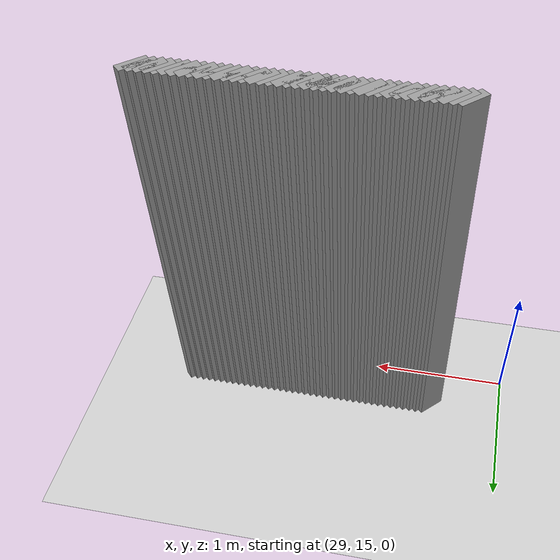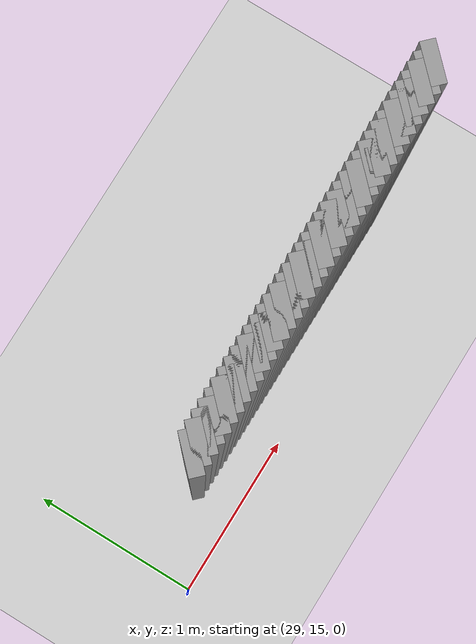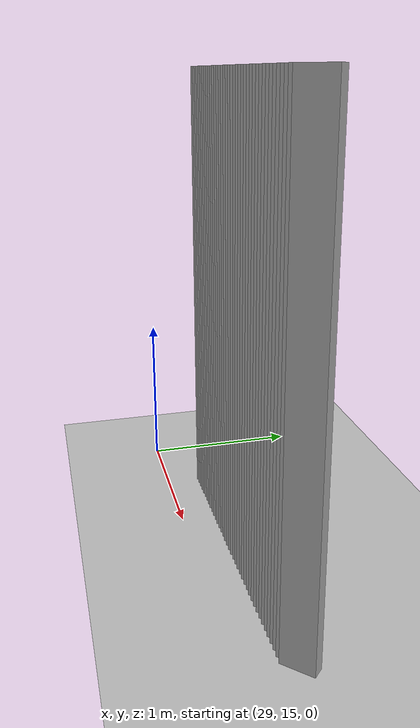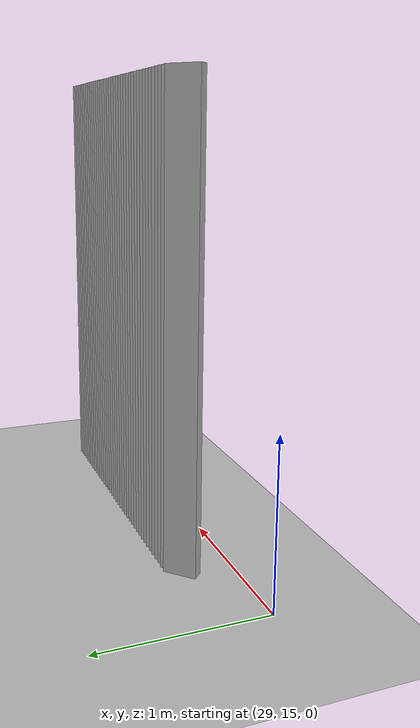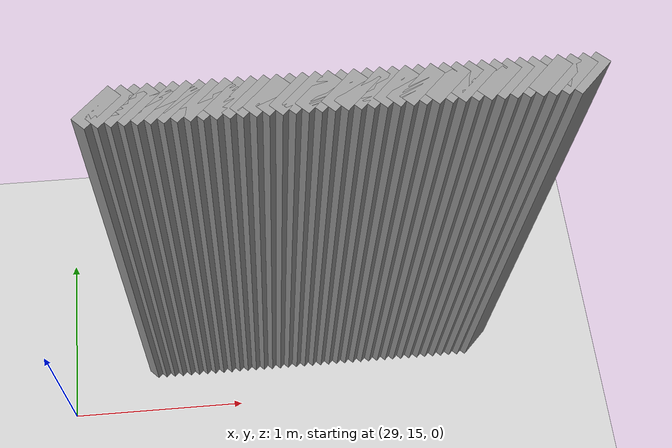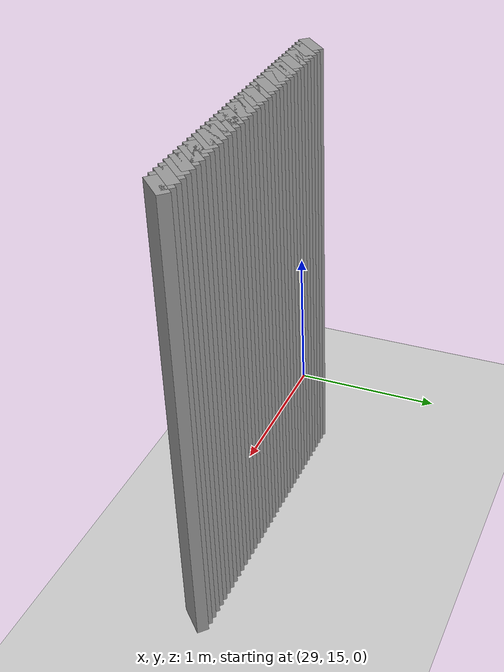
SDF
<sdf version="1.5">
 <world name="default">
  <include><uri>model://ground_plane</uri></include>
  <include><uri>model://sun</uri></include>
  <model name="grey_wall_1418">
   <static>1</static>
   <link name="link">
    <pose>29.55 15.3  1.4 0 0 -0.785398163397</pose>
    <collision name="collision"><geometry><box><size>0.0707106781187 .2  2.8</size></box></geometry></collision>
    <visual name="visual">
     <cast_shadows>0</cast_shadows>
     <geometry><box><size>0.0707106781187 .2  2.8</size></box></geometry>
     <material>
      <script>
       <uri>model://grey_wall/materials/scripts</uri>
       <uri>model://grey_wall/materials/textures</uri>
       <name>vrc/grey_wall</name>
      </script>
     </material>
    </visual>
   </link>
  </model>
  <model name="grey_wall_1419">
   <static>1</static>
   <link name="link">
    <pose>29.6 15.3  1.4 0 0 -0.785398163397</pose>
    <collision name="collision"><geometry><box><size>0.0707106781187 .2  2.8</size></box></geometry></collision>
    <visual name="visual">
     <cast_shadows>0</cast_shadows>
     <geometry><box><size>0.0707106781187 .2  2.8</size></box></geometry>
     <material>
      <script>
       <uri>model://grey_wall/materials/scripts</uri>
       <uri>model://grey_wall/materials/textures</uri>
       <name>vrc/grey_wall</name>
      </script>
     </material>
    </visual>
   </link>
  </model>
  <model name="grey_wall_1420">
   <static>1</static>
   <link name="link">
    <pose>29.65 15.3  1.4 0 0 -0.785398163397</pose>
    <collision name="collision"><geometry><box><size>0.0707106781187 .2  2.8</size></box></geometry></collision>
    <visual name="visual">
     <cast_shadows>0</cast_shadows>
     <geometry><box><size>0.0707106781187 .2  2.8</size></box></geometry>
     <material>
      <script>
       <uri>model://grey_wall/materials/scripts</uri>
       <uri>model://grey_wall/materials/textures</uri>
       <name>vrc/grey_wall</name>
      </script>
     </material>
    </visual>
   </link>
  </model>
  <model name="grey_wall_1421">
   <static>1</static>
   <link name="link">
    <pose>29.7 15.3  1.4 0 0 -0.785398163397</pose>
    <collision name="collision"><geometry><box><size>0.0707106781187 .2  2.8</size></box></geometry></collision>
    <visual name="visual">
     <cast_shadows>0</cast_shadows>
     <geometry><box><size>0.0707106781187 .2  2.8</size></box></geometry>
     <material>
      <script>
       <uri>model://grey_wall/materials/scripts</uri>
       <uri>model://grey_wall/materials/textures</uri>
       <name>vrc/grey_wall</name>
      </script>
     </material>
    </visual>
   </link>
  </model>
  <model name="grey_wall_1422">
   <static>1</static>
   <link name="link">
    <pose>29.75 15.3  1.4 0 0 -0.785398163397</pose>
    <collision name="collision"><geometry><box><size>0.0707106781187 .2  2.8</size></box></geometry></collision>
    <visual name="visual">
     <cast_shadows>0</cast_shadows>
     <geometry><box><size>0.0707106781187 .2  2.8</size></box></geometry>
     <material>
      <script>
       <uri>model://grey_wall/materials/scripts</uri>
       <uri>model://grey_wall/materials/textures</uri>
       <name>vrc/grey_wall</name>
      </script>
     </material>
    </visual>
   </link>
  </model>
  <model name="grey_wall_1423">
   <static>1</static>
   <link name="link">
    <pose>29.8 15.3  1.4 0 0 -0.785398163397</pose>
    <collision name="collision"><geometry><box><size>0.0707106781187 .2  2.8</size></box></geometry></collision>
    <visual name="visual">
     <cast_shadows>0</cast_shadows>
     <geometry><box><size>0.0707106781187 .2  2.8</size></box></geometry>
     <material>
      <script>
       <uri>model://grey_wall/materials/scripts</uri>
       <uri>model://grey_wall/materials/textures</uri>
       <name>vrc/grey_wall</name>
      </script>
     </material>
    </visual>
   </link>
  </model>
  <model name="grey_wall_1424">
   <static>1</static>
   <link name="link">
    <pose>29.85 15.3  1.4 0 0 -0.785398163397</pose>
    <collision name="collision"><geometry><box><size>0.0707106781187 .2  2.8</size></box></geometry></collision>
    <visual name="visual">
     <cast_shadows>0</cast_shadows>
     <geometry><box><size>0.0707106781187 .2  2.8</size></box></geometry>
     <material>
      <script>
       <uri>model://grey_wall/materials/scripts</uri>
       <uri>model://grey_wall/materials/textures</uri>
       <name>vrc/grey_wall</name>
      </script>
     </material>
    </visual>
   </link>
  </model>
  <model name="grey_wall_1425">
   <static>1</static>
   <link name="link">
    <pose>29.9 15.3  1.4 0 0 -0.785398163397</pose>
    <collision name="collision"><geometry><box><size>0.0707106781187 .2  2.8</size></box></geometry></collision>
    <visual name="visual">
     <cast_shadows>0</cast_shadows>
     <geometry><box><size>0.0707106781187 .2  2.8</size></box></geometry>
     <material>
      <script>
       <uri>model://grey_wall/materials/scripts</uri>
       <uri>model://grey_wall/materials/textures</uri>
       <name>vrc/grey_wall</name>
      </script>
     </material>
    </visual>
   </link>
  </model>
  <model name="grey_wall_1426">
   <static>1</static>
   <link name="link">
    <pose>29.95 15.3  1.4 0 0 -0.785398163397</pose>
    <collision name="collision"><geometry><box><size>0.0707106781187 .2  2.8</size></box></geometry></collision>
    <visual name="visual">
     <cast_shadows>0</cast_shadows>
     <geometry><box><size>0.0707106781187 .2  2.8</size></box></geometry>
     <material>
      <script>
       <uri>model://grey_wall/materials/scripts</uri>
       <uri>model://grey_wall/materials/textures</uri>
       <name>vrc/grey_wall</name>
      </script>
     </material>
    </visual>
   </link>
  </model>
  <model name="grey_wall_1427">
   <static>1</static>
   <link name="link">
    <pose>30.0 15.3  1.4 0 0 -0.785398163397</pose>
    <collision name="collision"><geometry><box><size>0.0707106781187 .2  2.8</size></box></geometry></collision>
    <visual name="visual">
     <cast_shadows>0</cast_shadows>
     <geometry><box><size>0.0707106781187 .2  2.8</size></box></geometry>
     <material>
      <script>
       <uri>model://grey_wall/materials/scripts</uri>
       <uri>model://grey_wall/materials/textures</uri>
       <name>vrc/grey_wall</name>
      </script>
     </material>
    </visual>
   </link>
  </model>
  <model name="grey_wall_1428">
   <static>1</static>
   <link name="link">
    <pose>30.05 15.3  1.4 0 0 -0.785398163397</pose>
    <collision name="collision"><geometry><box><size>0.0707106781187 .2  2.8</size></box></geometry></collision>
    <visual name="visual">
     <cast_shadows>0</cast_shadows>
     <geometry><box><size>0.0707106781187 .2  2.8</size></box></geometry>
     <material>
      <script>
       <uri>model://grey_wall/materials/scripts</uri>
       <uri>model://grey_wall/materials/textures</uri>
       <name>vrc/grey_wall</name>
      </script>
     </material>
    </visual>
   </link>
  </model>
  <model name="grey_wall_1429">
   <static>1</static>
   <link name="link">
    <pose>30.1 15.3  1.4 0 0 -0.785398163397</pose>
    <collision name="collision"><geometry><box><size>0.0707106781187 .2  2.8</size></box></geometry></collision>
    <visual name="visual">
     <cast_shadows>0</cast_shadows>
     <geometry><box><size>0.0707106781187 .2  2.8</size></box></geometry>
     <material>
      <script>
       <uri>model://grey_wall/materials/scripts</uri>
       <uri>model://grey_wall/materials/textures</uri>
       <name>vrc/grey_wall</name>
      </script>
     </material>
    </visual>
   </link>
  </model>
  <model name="grey_wall_1430">
   <static>1</static>
   <link name="link">
    <pose>30.15 15.3  1.4 0 0 -0.785398163397</pose>
    <collision name="collision"><geometry><box><size>0.0707106781187 .2  2.8</size></box></geometry></collision>
    <visual name="visual">
     <cast_shadows>0</cast_shadows>
     <geometry><box><size>0.0707106781187 .2  2.8</size></box></geometry>
     <material>
      <script>
       <uri>model://grey_wall/materials/scripts</uri>
       <uri>model://grey_wall/materials/textures</uri>
       <name>vrc/grey_wall</name>
      </script>
     </material>
    </visual>
   </link>
  </model>
  <model name="grey_wall_1431">
   <static>1</static>
   <link name="link">
    <pose>30.2 15.3  1.4 0 0 -0.785398163397</pose>
    <collision name="collision"><geometry><box><size>0.0707106781187 .2  2.8</size></box></geometry></collision>
    <visual name="visual">
     <cast_shadows>0</cast_shadows>
     <geometry><box><size>0.0707106781187 .2  2.8</size></box></geometry>
     <material>
      <script>
       <uri>model://grey_wall/materials/scripts</uri>
       <uri>model://grey_wall/materials/textures</uri>
       <name>vrc/grey_wall</name>
      </script>
     </material>
    </visual>
   </link>
  </model>
  <model name="grey_wall_1432">
   <static>1</static>
   <link name="link">
    <pose>30.25 15.3  1.4 0 0 -0.785398163397</pose>
    <collision name="collision"><geometry><box><size>0.0707106781187 .2  2.8</size></box></geometry></collision>
    <visual name="visual">
     <cast_shadows>0</cast_shadows>
     <geometry><box><size>0.0707106781187 .2  2.8</size></box></geometry>
     <material>
      <script>
       <uri>model://grey_wall/materials/scripts</uri>
       <uri>model://grey_wall/materials/textures</uri>
       <name>vrc/grey_wall</name>
      </script>
     </material>
    </visual>
   </link>
  </model>
  <model name="grey_wall_1433">
   <static>1</static>
   <link name="link">
    <pose>30.3 15.3  1.4 0 0 -0.785398163397</pose>
    <collision name="collision"><geometry><box><size>0.0707106781187 .2  2.8</size></box></geometry></collision>
    <visual name="visual">
     <cast_shadows>0</cast_shadows>
     <geometry><box><size>0.0707106781187 .2  2.8</size></box></geometry>
     <material>
      <script>
       <uri>model://grey_wall/materials/scripts</uri>
       <uri>model://grey_wall/materials/textures</uri>
       <name>vrc/grey_wall</name>
      </script>
     </material>
    </visual>
   </link>
  </model>
  <model name="grey_wall_1434">
   <static>1</static>
   <link name="link">
    <pose>30.35 15.3  1.4 0 0 -0.785398163397</pose>
    <collision name="collision"><geometry><box><size>0.0707106781187 .2  2.8</size></box></geometry></collision>
    <visual name="visual">
     <cast_shadows>0</cast_shadows>
     <geometry><box><size>0.0707106781187 .2  2.8</size></box></geometry>
     <material>
      <script>
       <uri>model://grey_wall/materials/scripts</uri>
       <uri>model://grey_wall/materials/textures</uri>
       <name>vrc/grey_wall</name>
      </script>
     </material>
    </visual>
   </link>
  </model>
  <model name="grey_wall_1435">
   <static>1</static>
   <link name="link">
    <pose>30.4 15.3  1.4 0 0 -0.785398163397</pose>
    <collision name="collision"><geometry><box><size>0.0707106781187 .2  2.8</size></box></geometry></collision>
    <visual name="visual">
     <cast_shadows>0</cast_shadows>
     <geometry><box><size>0.0707106781187 .2  2.8</size></box></geometry>
     <material>
      <script>
       <uri>model://grey_wall/materials/scripts</uri>
       <uri>model://grey_wall/materials/textures</uri>
       <name>vrc/grey_wall</name>
      </script>
     </material>
    </visual>
   </link>
  </model>
  <model name="grey_wall_1436">
   <static>1</static>
   <link name="link">
    <pose>30.45 15.3  1.4 0 0 -0.785398163397</pose>
    <collision name="collision"><geometry><box><size>0.0707106781187 .2  2.8</size></box></geometry></collision>
    <visual name="visual">
     <cast_shadows>0</cast_shadows>
     <geometry><box><size>0.0707106781187 .2  2.8</size></box></geometry>
     <material>
      <script>
       <uri>model://grey_wall/materials/scripts</uri>
       <uri>model://grey_wall/materials/textures</uri>
       <name>vrc/grey_wall</name>
      </script>
     </material>
    </visual>
   </link>
  </model>
  <model name="grey_wall_1437">
   <static>1</static>
   <link name="link">
    <pose>30.5 15.3  1.4 0 0 -0.785398163397</pose>
    <collision name="collision"><geometry><box><size>0.0707106781187 .2  2.8</size></box></geometry></collision>
    <visual name="visual">
     <cast_shadows>0</cast_shadows>
     <geometry><box><size>0.0707106781187 .2  2.8</size></box></geometry>
     <material>
      <script>
       <uri>model://grey_wall/materials/scripts</uri>
       <uri>model://grey_wall/materials/textures</uri>
       <name>vrc/grey_wall</name>
      </script>
     </material>
    </visual>
   </link>
  </model>
  <model name="grey_wall_1438">
   <static>1</static>
   <link name="link">
    <pose>30.55 15.3  1.4 0 0 -0.785398163397</pose>
    <collision name="collision"><geometry><box><size>0.0707106781187 .2  2.8</size></box></geometry></collision>
    <visual name="visual">
     <cast_shadows>0</cast_shadows>
     <geometry><box><size>0.0707106781187 .2  2.8</size></box></geometry>
     <material>
      <script>
       <uri>model://grey_wall/materials/scripts</uri>
       <uri>model://grey_wall/materials/textures</uri>
       <name>vrc/grey_wall</name>
      </script>
     </material>
    </visual>
   </link>
  </model>
  <model name="grey_wall_1439">
   <static>1</static>
   <link name="link">
    <pose>30.6 15.3  1.4 0 0 -0.785398163397</pose>
    <collision name="collision"><geometry><box><size>0.0707106781187 .2  2.8</size></box></geometry></collision>
    <visual name="visual">
     <cast_shadows>0</cast_shadows>
     <geometry><box><size>0.0707106781187 .2  2.8</size></box></geometry>
     <material>
      <script>
       <uri>model://grey_wall/materials/scripts</uri>
       <uri>model://grey_wall/materials/textures</uri>
       <name>vrc/grey_wall</name>
      </script>
     </material>
    </visual>
   </link>
  </model>
  <model name="grey_wall_1440">
   <static>1</static>
   <link name="link">
    <pose>30.65 15.3  1.4 0 0 -0.785398163397</pose>
    <collision name="collision"><geometry><box><size>0.0707106781187 .2  2.8</size></box></geometry></collision>
    <visual name="visual">
     <cast_shadows>0</cast_shadows>
     <geometry><box><size>0.0707106781187 .2  2.8</size></box></geometry>
     <material>
      <script>
       <uri>model://grey_wall/materials/scripts</uri>
       <uri>model://grey_wall/materials/textures</uri>
       <name>vrc/grey_wall</name>
      </script>
     </material>
    </visual>
   </link>
  </model>
  <model name="grey_wall_1441">
   <static>1</static>
   <link name="link">
    <pose>30.7 15.3  1.4 0 0 -0.785398163397</pose>
    <collision name="collision"><geometry><box><size>0.0707106781187 .2  2.8</size></box></geometry></collision>
    <visual name="visual">
     <cast_shadows>0</cast_shadows>
     <geometry><box><size>0.0707106781187 .2  2.8</size></box></geometry>
     <material>
      <script>
       <uri>model://grey_wall/materials/scripts</uri>
       <uri>model://grey_wall/materials/textures</uri>
       <name>vrc/grey_wall</name>
      </script>
     </material>
    </visual>
   </link>
  </model>
  <model name="grey_wall_1442">
   <static>1</static>
   <link name="link">
    <pose>30.75 15.3  1.4 0 0 -0.785398163397</pose>
    <collision name="collision"><geometry><box><size>0.0707106781187 .2  2.8</size></box></geometry></collision>
    <visual name="visual">
     <cast_shadows>0</cast_shadows>
     <geometry><box><size>0.0707106781187 .2  2.8</size></box></geometry>
     <material>
      <script>
       <uri>model://grey_wall/materials/scripts</uri>
       <uri>model://grey_wall/materials/textures</uri>
       <name>vrc/grey_wall</name>
      </script>
     </material>
    </visual>
   </link>
  </model>
  <model name="grey_wall_1443">
   <static>1</static>
   <link name="link">
    <pose>30.8 15.3  1.4 0 0 -0.785398163397</pose>
    <collision name="collision"><geometry><box><size>0.0707106781187 .2  2.8</size></box></geometry></collision>
    <visual name="visual">
     <cast_shadows>0</cast_shadows>
     <geometry><box><size>0.0707106781187 .2  2.8</size></box></geometry>
     <material>
      <script>
       <uri>model://grey_wall/materials/scripts</uri>
       <uri>model://grey_wall/materials/textures</uri>
       <name>vrc/grey_wall</name>
      </script>
     </material>
    </visual>
   </link>
  </model>
  <model name="grey_wall_1444">
   <static>1</static>
   <link name="link">
    <pose>30.85 15.3  1.4 0 0 -0.785398163397</pose>
    <collision name="collision"><geometry><box><size>0.0707106781187 .2  2.8</size></box></geometry></collision>
    <visual name="visual">
     <cast_shadows>0</cast_shadows>
     <geometry><box><size>0.0707106781187 .2  2.8</size></box></geometry>
     <material>
      <script>
       <uri>model://grey_wall/materials/scripts</uri>
       <uri>model://grey_wall/materials/textures</uri>
       <name>vrc/grey_wall</name>
      </script>
     </material>
    </visual>
   </link>
  </model>
  <model name="grey_wall_1445">
   <static>1</static>
   <link name="link">
    <pose>30.9 15.3  1.4 0 0 -0.785398163397</pose>
    <collision name="collision"><geometry><box><size>0.0707106781187 .2  2.8</size></box></geometry></collision>
    <visual name="visual">
     <cast_shadows>0</cast_shadows>
     <geometry><box><size>0.0707106781187 .2  2.8</size></box></geometry>
     <material>
      <script>
       <uri>model://grey_wall/materials/scripts</uri>
       <uri>model://grey_wall/materials/textures</uri>
       <name>vrc/grey_wall</name>
      </script>
     </material>
    </visual>
   </link>
  </model>
  <model name="grey_wall_1446">
   <static>1</static>
   <link name="link">
    <pose>30.95 15.3  1.4 0 0 -0.785398163397</pose>
    <collision name="collision"><geometry><box><size>0.0707106781187 .2  2.8</size></box></geometry></collision>
    <visual name="visual">
     <cast_shadows>0</cast_shadows>
     <geometry><box><size>0.0707106781187 .2  2.8</size></box></geometry>
     <material>
      <script>
       <uri>model://grey_wall/materials/scripts</uri>
       <uri>model://grey_wall/materials/textures</uri>
       <name>vrc/grey_wall</name>
      </script>
     </material>
    </visual>
   </link>
  </model>
  <model name="grey_wall_1447">
   <static>1</static>
   <link name="link">
    <pose>31.0 15.3  1.4 0 0 -0.785398163397</pose>
    <collision name="collision"><geometry><box><size>0.0707106781187 .2  2.8</size></box></geometry></collision>
    <visual name="visual">
     <cast_shadows>0</cast_shadows>
     <geometry><box><size>0.0707106781187 .2  2.8</size></box></geometry>
     <material>
      <script>
       <uri>model://grey_wall/materials/scripts</uri>
       <uri>model://grey_wall/materials/textures</uri>
       <name>vrc/grey_wall</name>
      </script>
     </material>
    </visual>
   </link>
  </model>
  <model name="grey_wall_1448">
   <static>1</static>
   <link name="link">
    <pose>31.05 15.3  1.4 0 0 -0.785398163397</pose>
    <collision name="collision"><geometry><box><size>0.0707106781187 .2  2.8</size></box></geometry></collision>
    <visual name="visual">
     <cast_shadows>0</cast_shadows>
     <geometry><box><size>0.0707106781187 .2  2.8</size></box></geometry>
     <material>
      <script>
       <uri>model://grey_wall/materials/scripts</uri>
       <uri>model://grey_wall/materials/textures</uri>
       <name>vrc/grey_wall</name>
      </script>
     </material>
    </visual>
   </link>
  </model>
  <model name="grey_wall_1449">
   <static>1</static>
   <link name="link">
    <pose>31.1 15.3  1.4 0 0 -0.785398163397</pose>
    <collision name="collision"><geometry><box><size>0.0707106781187 .2  2.8</size></box></geometry></collision>
    <visual name="visual">
     <cast_shadows>0</cast_shadows>
     <geometry><box><size>0.0707106781187 .2  2.8</size></box></geometry>
     <material>
      <script>
       <uri>model://grey_wall/materials/scripts</uri>
       <uri>model://grey_wall/materials/textures</uri>
       <name>vrc/grey_wall</name>
      </script>
     </material>
    </visual>
   </link>
  </model>
  <model name="grey_wall_1450">
   <static>1</static>
   <link name="link">
    <pose>31.15 15.3  1.4 0 0 -0.785398163397</pose>
    <collision name="collision"><geometry><box><size>0.0707106781187 .2  2.8</size></box></geometry></collision>
    <visual name="visual">
     <cast_shadows>0</cast_shadows>
     <geometry><box><size>0.0707106781187 .2  2.8</size></box></geometry>
     <material>
      <script>
       <uri>model://grey_wall/materials/scripts</uri>
       <uri>model://grey_wall/materials/textures</uri>
       <name>vrc/grey_wall</name>
      </script>
     </material>
    </visual>
   </link>
  </model>
  <model name="grey_wall_1451">
   <static>1</static>
   <link name="link">
    <pose>31.2 15.3  1.4 0 0 -0.785398163397</pose>
    <collision name="collision"><geometry><box><size>0.0707106781187 .2  2.8</size></box></geometry></collision>
    <visual name="visual">
     <cast_shadows>0</cast_shadows>
     <geometry><box><size>0.0707106781187 .2  2.8</size></box></geometry>
     <material>
      <script>
       <uri>model://grey_wall/materials/scripts</uri>
       <uri>model://grey_wall/materials/textures</uri>
       <name>vrc/grey_wall</name>
      </script>
     </material>
    </visual>
   </link>
  </model>
  <model name="grey_wall_1452">
   <static>1</static>
   <link name="link">
    <pose>31.25 15.3  1.4 0 0 -0.785398163397</pose>
    <collision name="collision"><geometry><box><size>0.0707106781187 .2  2.8</size></box></geometry></collision>
    <visual name="visual">
     <cast_shadows>0</cast_shadows>
     <geometry><box><size>0.0707106781187 .2  2.8</size></box></geometry>
     <material>
      <script>
       <uri>model://grey_wall/materials/scripts</uri>
       <uri>model://grey_wall/materials/textures</uri>
       <name>vrc/grey_wall</name>
      </script>
     </material>
    </visual>
   </link>
  </model>
  <model name="grey_wall_1453">
   <static>1</static>
   <link name="link">
    <pose>31.3 15.3  1.4 0 0 -0.785398163397</pose>
    <collision name="collision"><geometry><box><size>0.0707106781187 .2  2.8</size></box></geometry></collision>
    <visual name="visual">
     <cast_shadows>0</cast_shadows>
     <geometry><box><size>0.0707106781187 .2  2.8</size></box></geometry>
     <material>
      <script>
       <uri>model://grey_wall/materials/scripts</uri>
       <uri>model://grey_wall/materials/textures</uri>
       <name>vrc/grey_wall</name>
      </script>
     </material>
    </visual>
   </link>
  </model>
  <model name="grey_wall_1454">
   <static>1</static>
   <link name="link">
    <pose>31.35 15.3  1.4 0 0 -0.785398163397</pose>
    <collision name="collision"><geometry><box><size>0.0707106781187 .2  2.8</size></box></geometry></collision>
    <visual name="visual">
     <cast_shadows>0</cast_shadows>
     <geometry><box><size>0.0707106781187 .2  2.8</size></box></geometry>
     <material>
      <script>
       <uri>model://grey_wall/materials/scripts</uri>
       <uri>model://grey_wall/materials/textures</uri>
       <name>vrc/grey_wall</name>
      </script>
     </material>
    </visual>
   </link>
  </model>
  <model name="grey_wall_1455">
   <static>1</static>
   <link name="link">
    <pose>31.4 15.3  1.4 0 0 -0.785398163397</pose>
    <collision name="collision"><geometry><box><size>0.0707106781187 .2  2.8</size></box></geometry></collision>
    <visual name="visual">
     <cast_shadows>0</cast_shadows>
     <geometry><box><size>0.0707106781187 .2  2.8</size></box></geometry>
     <material>
      <script>
       <uri>model://grey_wall/materials/scripts</uri>
       <uri>model://grey_wall/materials/textures</uri>
       <name>vrc/grey_wall</name>
      </script>
     </material>
    </visual>
   </link>
  </model>
  <model name="grey_wall_1456">
   <static>1</static>
   <link name="link">
    <pose>31.45 15.3  1.4 0 0 -0.785398163397</pose>
    <collision name="collision"><geometry><box><size>0.0707106781187 .2  2.8</size></box></geometry></collision>
    <visual name="visual">
     <cast_shadows>0</cast_shadows>
     <geometry><box><size>0.0707106781187 .2  2.8</size></box></geometry>
     <material>
      <script>
       <uri>model://grey_wall/materials/scripts</uri>
       <uri>model://grey_wall/materials/textures</uri>
       <name>vrc/grey_wall</name>
      </script>
     </material>
    </visual>
   </link>
  </model>
 </world>
</sdf>
